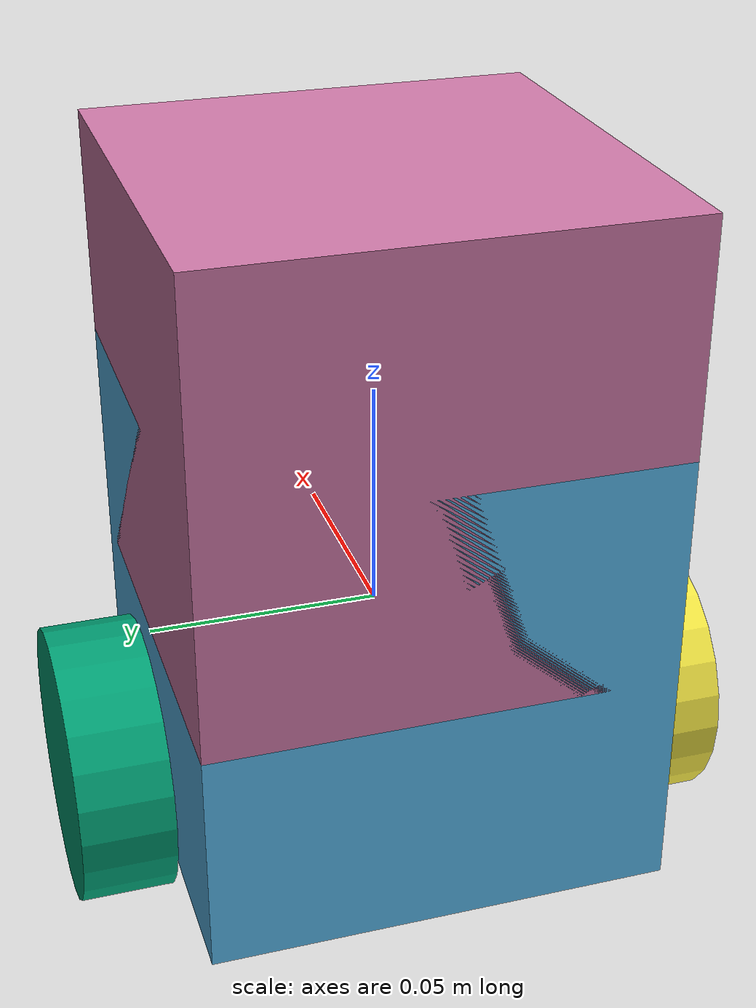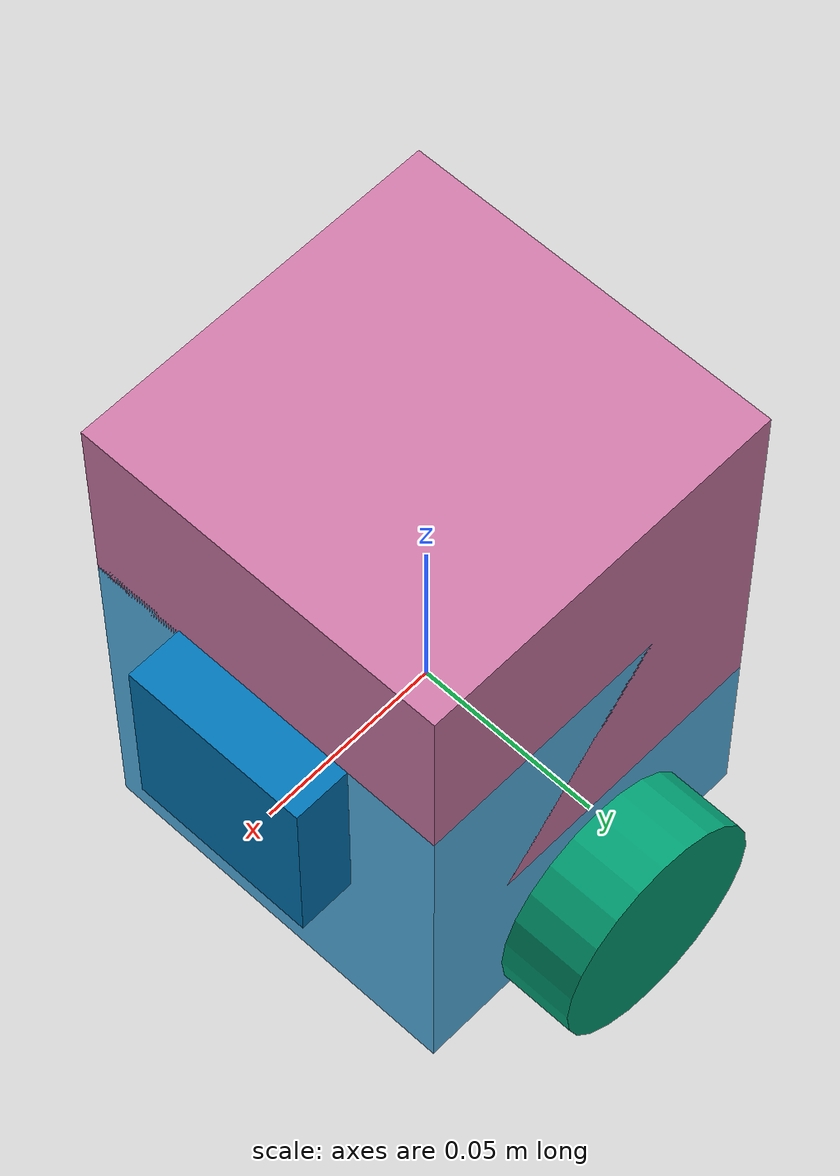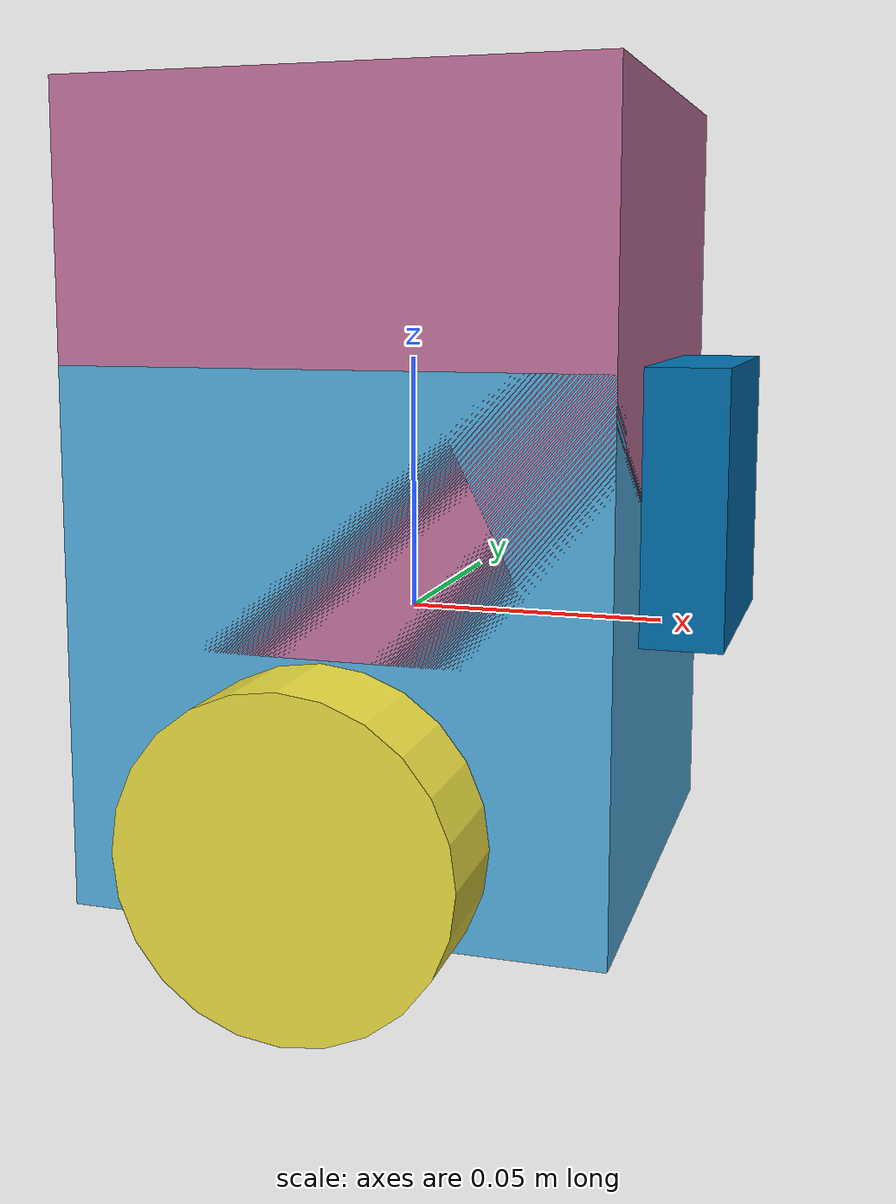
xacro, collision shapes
<?xml version='1.0'?>
<robot name="my_robot_v3" xmlns:xacro="http://www.ros.org/wiki/xacro">
  <link name="robot_footprint"/>

  <xacro:include filename="$(find my_robot_v3)/urdf/my_robot_v3.gazebo" />

  <joint name="robot_footprint_joint" type="fixed">
    <origin rpy="0 0 0" xyz="0 0 0"/>
    <parent link="robot_footprint"/>
    <child link="body"/>
  </joint>

  <link name="body">
    <pose>0 0 0 0 0 0</pose>
    <inertial>
      <mass value="3"/>
      <origin rpy="0 0 0" xyz="0.0 0 0"/>
      <inertia ixx="0.1" ixy="0" ixz="0" iyy="0.1" iyz="0" izz="0.1"/>
    </inertial>
    <collision name="body_collision">
      <origin rpy="0 0 0" xyz="0 0 0"/>
      <geometry>
        <box size="0.1 0.1 0.1"/>
      </geometry>
    </collision>
    <visual name="body_visual">
      <origin rpy="0 0 1.5707" xyz="0.05 -0.05 -0.045"/>
      <origin rpy="0 0 0" xyz="0 0 0"/>
      <geometry>
        <mesh filename ="file://$(find my_robot_v3)/meshes/miniPi_5.dae"/>
      </geometry>
    </visual>
    <collision name="back_support_collision">
      <origin rpy="0 0 0" xyz="-0.035 0 -0.05"/>
      <geometry>
        <sphere radius="0.01"/>
      </geometry>
    </collision>
    <visual name="back_support_visual">
      <origin rpy="0 0 0" xyz="-0.035 0 -0.05"/>
      <geometry>
        <sphere radius="0.01"/>
      </geometry>
    </visual>
    <collision name="front_support_collision">
      <origin rpy="0 0 0" xyz="0.035 0 -0.05"/>
      <geometry>
        <sphere radius="0.01"/>
      </geometry>
    </collision>
    <visual name="front_support_visual">
      <origin rpy="0 0 0" xyz="0.035 0 -0.05"/>
      <geometry>
        <sphere radius="0.01"/>
      </geometry>
    </visual>
  </link>

  <link name="left_wheel">
    <pose>0 0 0 0 0 0</pose>
    <inertial>
      <mass value="5"/>
      <origin rpy="1.5707 0 0" xyz="0.0 0 0"/>
      <inertia ixx="0.1" ixy="0" ixz="0" iyy="0.1" iyz="0" izz="0.1"/>
    </inertial>
    <collision name="left_wheel_collision">
      <origin rpy="1.5707 0 0" xyz="0.0 0 0"/>
      <geometry>
        <cylinder length="0.02" radius="0.03"/>
      </geometry>
    </collision>
    <visual name="left_wheel_visual">
      <origin rpy="1.5707 0 0" xyz="0.0 0 0"/>
      <geometry>
        <cylinder length="0.02" radius="0.03"/>
      </geometry>
    </visual>
  </link>

  <link name="right_wheel">
    <pose>0 0 0 0 0 0</pose>
    <inertial>
      <mass value="5"/>
      <origin rpy="1.5707 0 0" xyz="0.0 0 0"/>
      <inertia ixx="0.1" ixy="0" ixz="0" iyy="0.1" iyz="0" izz="0.1"/>
    </inertial>
    <collision name="right_wheel_collision">
      <origin rpy="1.5707 0 0" xyz="0.0 0 0"/>
      <geometry>
        <cylinder length="0.02" radius="0.03"/>
      </geometry>
    </collision>
    <visual name="right_wheel_visual">
      <origin rpy="1.5707 0 0" xyz="0.0 0 0"/>
      <geometry>
        <cylinder length="0.02" radius="0.03"/>
      </geometry>
    </visual>
  </link>

  <joint name="left_wheel_hinge" type="continuous">
    <origin rpy="0 0 0" xyz="0 0.062 -0.03"/>
    <child link="left_wheel"/>
    <parent link="body"/>
    <axis rpy="0 0 0" xyz="0 1 0"/>
    <limit effort="10000" velocity="1000"/>
    <dynamics damping="1.0" friction="1.0"/>
  </joint>

  <joint name="right_wheel_hinge" type="continuous">
    <origin rpy="0 0 0" xyz="0 -0.062 -0.03"/>
    <child link="right_wheel"/>
    <parent link="body"/>
    <axis rpy="0 0 0" xyz="0 1 0"/>
    <limit effort="10000" velocity="1000"/>
    <dynamics damping="1.0" friction="1.0"/>
  </joint>

  <!-- SENSORS -->

  <!-- Camera -->

  <link name="camera">
    <pose>0 0 0 0 0 0</pose>
    <inertial>
      <mass value="0.1"/>
      <origin rpy="0 0 0" xyz="0 0 0"/>
      <inertia ixx="1e-6" ixy="0" ixz="0" iyy="1e-6" iyz="0" izz="1e-6"/>
    </inertial>
    <collision name="camera_collision">
      <origin rpy="0 0 0" xyz="0 0 0"/>
      <geometry>
        <box size=".05 .05 .05"/>
      </geometry>
    </collision>
    <visual name="camera_visual">
      <origin rpy="0 0 0" xyz="0 0 0"/>
      <geometry>
        <box size=".05 .05 .05"/>
      </geometry>
    </visual>
  </link>

  <joint name="camera_joint" type="fixed">
    <origin rpy="0 0 0" xyz="0.04 0 0.025"/>
    <child link="camera"/>
    <parent link="body"/>
    <axis rpy="0 0 0" xyz="0 1 0"/>
  </joint>

  <link name="camera_link_optical">
  </link>

  <joint name="camera_optical_joint" type="fixed">
    <origin xyz="0 0 0" rpy="-1.5707 0 -1.5707"/>
    <parent link="camera"/>
    <child link="camera_link_optical"/>
  </joint>

  <!-- Lidar -->

  <link name="hokuyo">
    <pose>0 0 0 0 0 0</pose>
    <inertial>
      <mass value="0"/>
      <origin rpy="0 0 0" xyz="0 0 0"/>
      <inertia ixx="1e-6" ixy="0" ixz="0" iyy="1e-6" iyz="0" izz="1e-6"/>
    </inertial>
    <collision name="hokuyo_collision">
      <origin rpy="0 0 0" xyz="0 0 0"/>
      <geometry>
        <box size="0.1 0.1 0.1"/>
      </geometry>
    </collision>
    <visual name="hokuyo_visual">
      <origin rpy="0 0 0" xyz="0 0 0"/>
      <geometry>
        <mesh filename = "file://$(find my_robot_v3)/meshes/hokuyo.dae"/>
      </geometry>
    </visual>
  </link>

  <joint name="hokuyo_joint" type="fixed">
    <origin rpy="0 0 0" xyz="0 0 0.05"/>
    <child link="hokuyo"/>
    <parent link="body"/>
    <axis rpy="0 0 0" xyz="0 1 0"/>
  </joint>

</robot>
